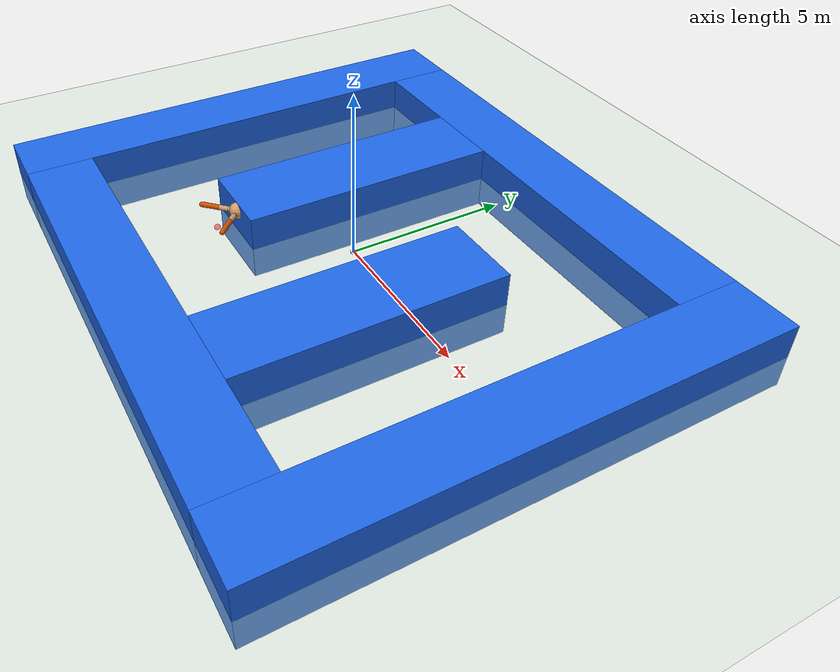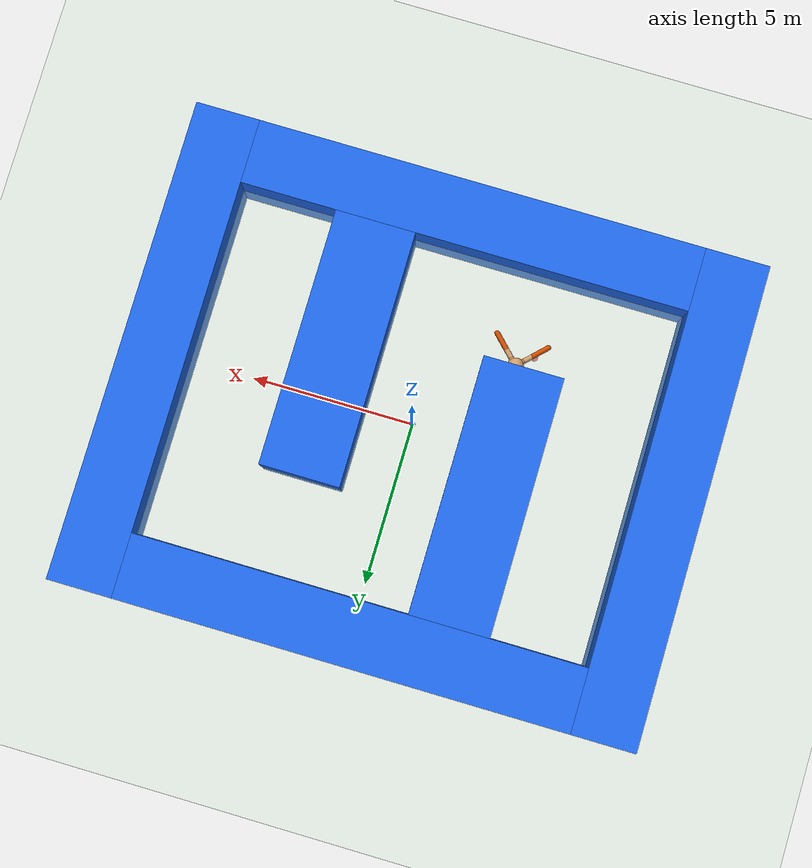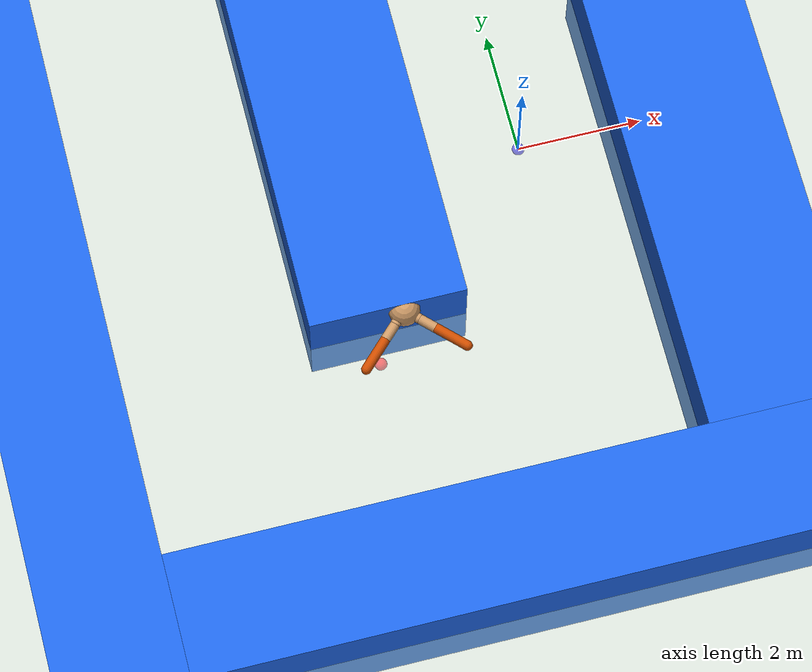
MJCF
<?xml version="1.0" encoding="utf-8"?>
<mujoco model="antmaze">
    <include file="config_dt3.xml"></include>
    <include file="assets.xml"></include>
    <worldbody>
        <light cutoff="100" diffuse="1 1 1" dir="-0 0 -1.3" directional="true" exponent="1" pos="0 0 1.3" specular=".1 .1 .1"/>
        <geom conaffinity="1" condim="3" material="MatPlane" name="floor" pos="0 0 0" rgba="0.8 0.9 0.8 1" size="50 50 50" type="plane"/>
        <include file="ant_small.xml"></include>
        <include file="maze_walls_small.xml"></include>

        <!--By default, this goal will be hidden under the floor-->
        <site name="goal" rgba="0 1 1 0.5" pos="0. 0. -1" size="0.5" />
        <site name="origin" rgba="0 0 1 0.5" pos="0. 0. 0." size="0.1" />
        <site name="start" rgba="1 0 0 0.5" pos="-3 -3 0." size="0.1" />
    </worldbody>
    <actuator>
        <motor ctrllimited="true" ctrlrange="-1.0 1.0" joint="hip_4" gear="30"/>
        <motor ctrllimited="true" ctrlrange="-1.0 1.0" joint="ankle_4" gear="30"/>
        <motor ctrllimited="true" ctrlrange="-1.0 1.0" joint="hip_1" gear="30"/>
        <motor ctrllimited="true" ctrlrange="-1.0 1.0" joint="ankle_1" gear="30"/>
        <motor ctrllimited="true" ctrlrange="-1.0 1.0" joint="hip_2" gear="30"/>
        <motor ctrllimited="true" ctrlrange="-1.0 1.0" joint="ankle_2" gear="30"/>
        <motor ctrllimited="true" ctrlrange="-1.0 1.0" joint="hip_3" gear="30"/>
        <motor ctrllimited="true" ctrlrange="-1.0 1.0" joint="ankle_3" gear="30"/>
    </actuator>
</mujoco>

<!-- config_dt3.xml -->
<mujoco>
    <compiler angle="degree" coordinate="local" inertiafromgeom="true"/>
    <option integrator="RK4" timestep="0.03"/>
    <default>
        <joint armature="1" damping="1" limited="true"/>
        <geom conaffinity="0" condim="3" density="5.0" friction="1 0.5 0.5" margin="0.01" rgba="0.8 0.6 0.4 1"/>
    </default>
</mujoco>

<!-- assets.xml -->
<mujoco>
    <asset>
        <texture builtin="gradient" height="100" rgb1="1 1 1" rgb2="0 0 0" type="skybox" width="100"/>
        <texture builtin="flat" height="1278" mark="cross" markrgb="1 1 1" name="texgeom" random="0.01" rgb1="0.8 0.6 0.4" rgb2="0.8 0.6 0.4" type="cube" width="127"/>
        <texture builtin="checker" height="100" width="100" name="texplane" rgb1="0.5 0.5 0.5" rgb2="0.8 0.8 0.8" type="2d"/>

        <material name="MatPlane" reflectance="0.5" shininess="1" specular="1" texrepeat="60 60" texture="texplane"/>
        <material name="geom" texture="texgeom" texuniform="true"/>

        <texture name="wood" file="../texture/wood.png" type="cube"/>
        <material shininess=".1" name="wood" texture="wood" specular="0.4"/>
        <texture name="medium_wood" file="../texture/medium_wood.png" type="cube"/>
        <material shininess=".1" name="medium_wood" texture="medium_wood" specular="0.4"/>
        <texture name="light_wood" file="../texture/light_wood.png" type="cube"/>
        <material shininess=".1" name="light_wood" texture="light_wood" specular="0.4"/>
        <texture name="darkwood" file="../texture/darkwood.png" type="cube"/>
        <material shininess=".1" name="darkwood" texture="darkwood" specular="0.4"/>
        <texture name="granite" file="../texture/granite.png" type="cube"/>
        <material shininess=".1" name="granite" texture="granite" specular="0.4"/>
    </asset>
</mujoco>

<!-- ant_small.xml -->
<!-- Same a gym ant but with gear ratio of 30 and sites -->
<mujoco model="ant">
    <body name="torso" pos="-2.5 -2.5 0.75">
      <geom name="torso_geom" pos="0 0 0" size="0.25" type="sphere"/>
      <joint armature="0" damping="0" limited="false" margin="0.01" name="root" pos="0 0 0" type="free"/>
      <body name="front_left_leg" pos="0 0 0">
        <geom fromto="0.0 0.0 0.0 0.2 0.2 0.0" name="aux_1_geom" size="0.08" type="capsule"/>
        <body name="aux_1" pos="0.2 0.2 0">
          <joint axis="0 0 1" name="hip_1" pos="0.0 0.0 0.0" range="-30 30" type="hinge"/>
          <geom fromto="0.0 0.0 0.0 0.2 0.2 0.0" name="left_leg_geom" size="0.08" type="capsule"/>
          <body pos="0.2 0.2 0">
            <joint axis="-1 1 0" name="ankle_1" pos="0.0 0.0 0.0" range="30 70" type="hinge"/>
            <geom fromto="0.0 0.0 0.0 0.4 0.4 0.0" name="left_ankle_geom" size="0.08" type="capsule"/>
          </body>
        </body>
      </body>
      <body name="front_right_leg" pos="0 0 0">
        <geom fromto="0.0 0.0 0.0 -0.2 0.2 0.0" name="aux_2_geom" size="0.08" type="capsule"/>
        <body name="aux_2" pos="-0.2 0.2 0">
          <joint axis="0 0 1" name="hip_2" pos="0.0 0.0 0.0" range="-30 30" type="hinge"/>
          <geom fromto="0.0 0.0 0.0 -0.2 0.2 0.0" name="right_leg_geom" size="0.08" type="capsule"/>
          <body pos="-0.2 0.2 0">
            <joint axis="1 1 0" name="ankle_2" pos="0.0 0.0 0.0" range="-70 -30" type="hinge"/>
            <geom fromto="0.0 0.0 0.0 -0.4 0.4 0.0" name="right_ankle_geom" size="0.08" type="capsule"/>
          </body>
        </body>
      </body>
      <body name="back_leg" pos="0 0 0">
        <geom fromto="0.0 0.0 0.0 -0.2 -0.2 0.0" name="aux_3_geom" size="0.08" type="capsule"/>
        <body name="aux_3" pos="-0.2 -0.2 0">
          <joint axis="0 0 1" name="hip_3" pos="0.0 0.0 0.0" range="-30 30" type="hinge"/>
          <geom fromto="0.0 0.0 0.0 -0.2 -0.2 0.0" name="back_leg_geom" size="0.08" type="capsule"/>
          <body pos="-0.2 -0.2 0">
            <joint axis="-1 1 0" name="ankle_3" pos="0.0 0.0 0.0" range="-70 -30" type="hinge"/>
            <geom fromto="0.0 0.0 0.0 -0.4 -0.4 0.0" name="third_ankle_geom" size="0.08" type="capsule"
            rgba="0.8 0.3 0 1"/>
          </body>
        </body>
      </body>
      <body name="right_back_leg" pos="0 0 0">
        <geom fromto="0.0 0.0 0.0 0.2 -0.2 0.0" name="aux_4_geom" size="0.08" type="capsule"/>
        <body name="aux_4" pos="0.2 -0.2 0">
          <joint axis="0 0 1" name="hip_4" pos="0.0 0.0 0.0" range="-30 30" type="hinge"/>
          <geom fromto="0.0 0.0 0.0 0.2 -0.2 0.0" name="rightback_leg_geom" size="0.08" type="capsule"/>
          <body pos="0.2 -0.2 0">
            <joint axis="1 1 0" name="ankle_4" pos="0.0 0.0 0.0" range="30 70" type="hinge"/>
            <geom fromto="0.0 0.0 0.0 0.4 -0.4 0.0" name="fourth_ankle_geom" size="0.08" type="capsule"
                rgba="0.8 0.3 0 1"/>
          </body>
        </body>
      </body>
    </body>
</mujoco>

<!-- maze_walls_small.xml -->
<mujoco>
        <!--&lt;!&ndash; size = walls pos / 2&ndash;&gt;-->
                  <!--rgba=".12 .4 .9 0.5"-->
            <!--&lt;!&ndash; pos = 1 + 3*(inner wall size) &ndash;&gt;-->
            <!--&lt;!&ndash; size = 3*(inner wall size) &ndash;&gt;-->
                  <!--rgba=".12 .4 .9 0.5"-->
                  <!--rgba=".12 .4 .9 0.5"-->
            <!--&lt;!&ndash; pos = 1 + 3*(inner wall size) &ndash;&gt;-->
            <!--&lt;!&ndash; size = 2 + 3*(inner wall size) &ndash;&gt;-->
                  <!--rgba=".12 .4 .9 0.5"-->
                  <!--rgba=".12 .4 .9 0.5"-->
    <body name="walls" pos="0 0 0">
        <!-- size = walls pos / 2-->
        <body name="innerwall" pos="0 0 0">
                  <!--rgba=".12 .4 .9 1"-->
            <geom type="box" pos="-2.75 1.5 0" size="1.25 4 1"
                  rgba=".12 .4 .9 1"
                  contype="3" conaffinity="3" />
                  <!--rgba="1 1 1 1"-->
                  <!--rgba="1 1 1 1"-->
            <geom type="box" pos="2.75 -1.5 0" size="1.25 4 1"
                  rgba=".12 .4 .9 1"
                  contype="3" conaffinity="3" />
                  <!--rgba="1 1 1 1"-->
                  <!--rgba="1 1 1 1"-->
        </body>
        <body name="outerwall" pos="0 0 0">
            <!-- pos = 1 + 3*(inner wall size) -->
            <!-- size = 3*(inner wall size) -->
            <geom type="box" pos="0 6.5 0" size="7 1 1"
                  rgba=".12 .4 .9 1"
                  contype="2" conaffinity="3" />
            <geom type="box" pos="0 -6.5 0" size="7 1 1"
                  rgba=".12 .4 .9 1"
                  contype="2" conaffinity="3" />
            <!-- pos = 1 + 3*(inner wall size) -->
            <!-- size = 2 + 3*(inner wall size) -->
            <geom type="box" pos="-8 0 0" size="1 7.5 1"
                  rgba=".12 .4 .9 1"
                  contype="2" conaffinity="3" />
            <geom type="box" pos="8 0 0" size="1 7.5 1"
                  rgba=".12 .4 .9 1"
                  contype="2" conaffinity="3" />
                  <!--rgba="1 1 1 1"-->
        </body>
    </body>
        <!--rgba=".12 .4 .9 1"-->
        <!--rgba=".12 .4 .9 1"-->
        <!--rgba=".12 .4 .9 1"-->
        <!--rgba=".12 .4 .9 1"-->
        <!--rgba=".12 .4 .9 1"-->
</mujoco>
